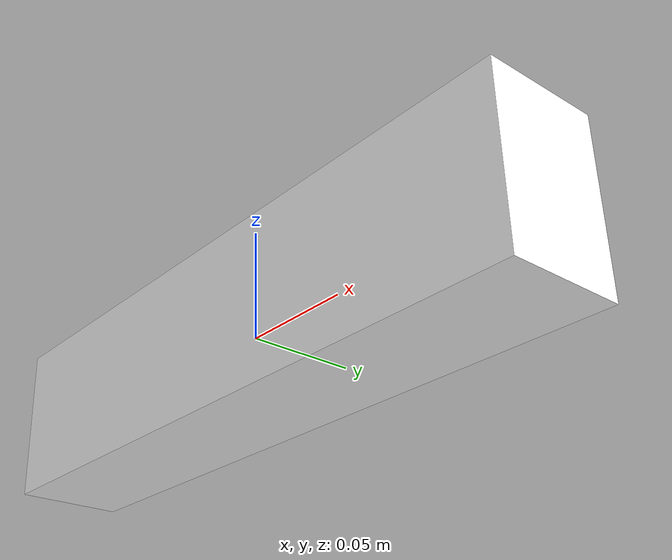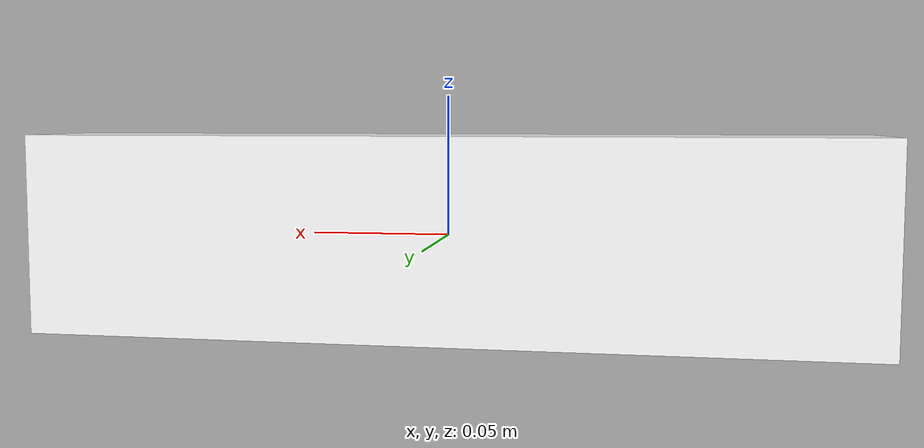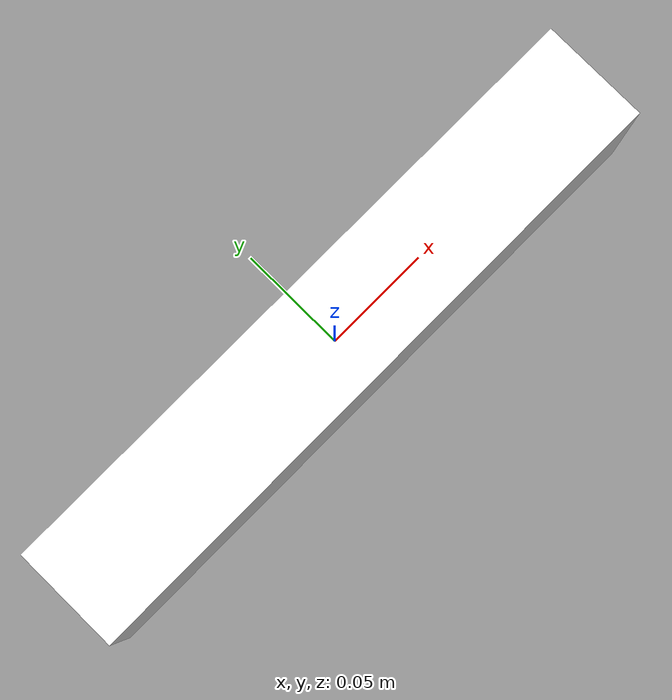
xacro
<?xml version="1.0"?>
<robot name="five_axis_robot" xmlns:xacro="http://www.ros.org/wiki/xacro">

<material name="white">
    <color rgba="1 1 1 1"/>
</material>

<link name="world"/>

<link name="support">
	<inertial>
	  <mass value="0.3"/>
	  <origin rpy="0 0 0" xyz="0.0 0.0 0.0"/>
	  <inertia ixx="1.0" ixy="0.0" ixz="0.0" iyy="1.0" iyz="0.0" izz="1.0"/>
	</inertial>
	<visual>
	  <origin rpy="0 0 0" xyz="0.0 0.0 0.0"/>
	  <geometry name="base_link_visual">
	    <box size="0.3 0.05 0.072" />
	  </geometry>
	  <material name="white">
	  </material>
	</visual>
	<collision>
	  <origin rpy="0 0 0" xyz="0.0 0.0 0.0"/>
	  <geometry name="base_link_collision">
	     <box size="0.3 0.05 0.075" />
	  </geometry>
	  <contact_coefficients kd="1.0" kp="1000.0" mu="0"/>
	</collision>
</link>

<joint name="support_to_world" type="fixed">
	<parent link="world"/>
	<child link="support"/>
	<origin rpy="0 0 0" xyz="0 0 0"/>
</joint>

</robot>
